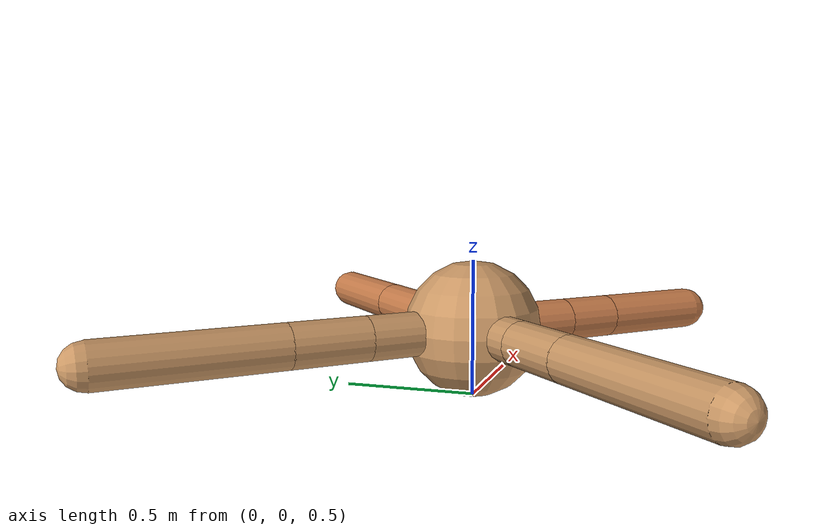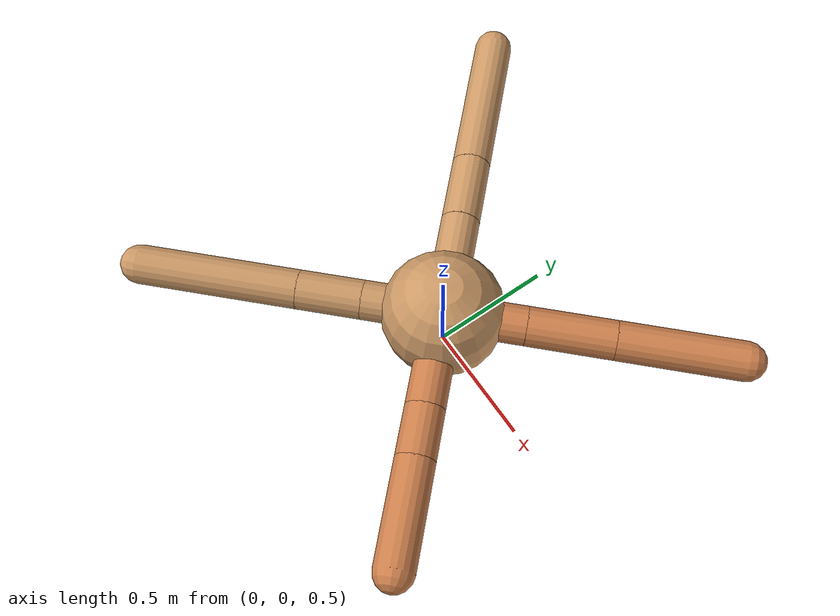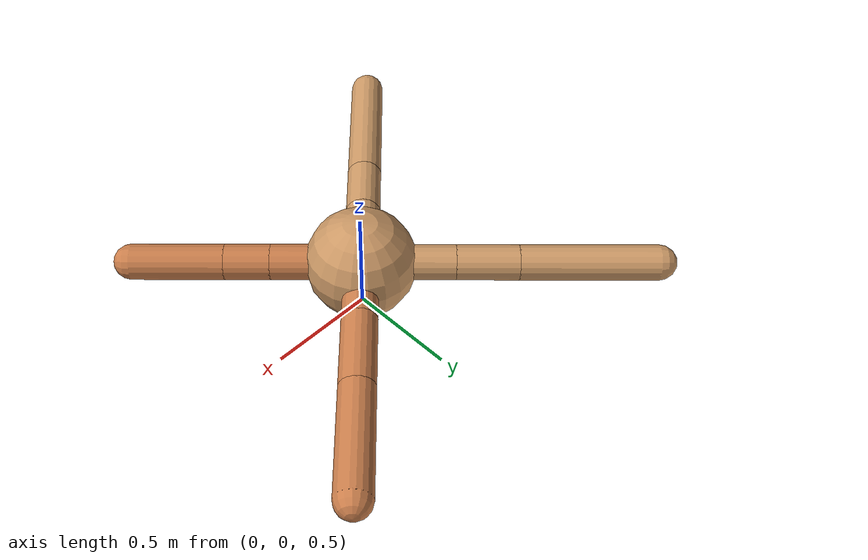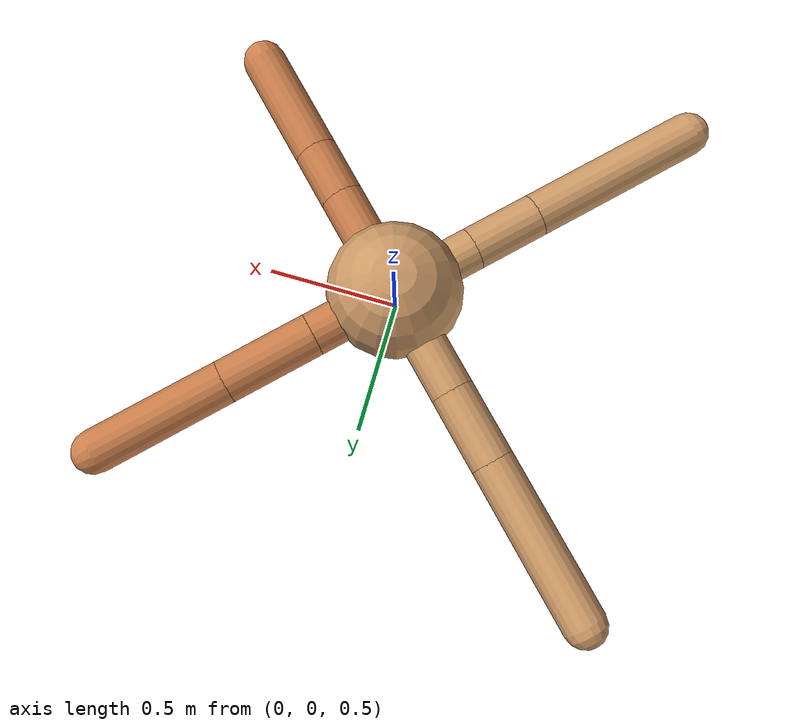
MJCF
<mujoco model="ant">
  <compiler angle="degree" coordinate="local" inertiafromgeom="true" />
  <option integrator="RK4" timestep="0.01" />
  <custom>
    <numeric data="0.0 0.0 0.55 1.0 0.0 0.0 0.0 0.0 1.0 0.0 -1.0 0.0 -1.0 0.0 1.0" name="init_qpos" />
  </custom>
  <default>
    <joint armature="1" damping="1" limited="true" />
    <geom conaffinity="0" condim="3" density="5.0" friction="1.5 0.1 0.1" margin="0.01" rgba="0.8 0.6 0.4 1" />
  </default>
  <worldbody>
    <body name="torso" pos="0 0 0.75">
      <geom name="torso_geom" pos="0 0 0" size="0.25" type="sphere" />

      <body name="front_left_leg" pos="0 0 0">
        <geom fromto="0.0 0.0 0.0 0.2368483332655191 0.2368483332655191 0.0" name="aux_1_geom" size="0.08" type="capsule" rgba=".8 .5 .3 1" />
        <body name="aux_1" pos="0.2368483332655191 0.2368483332655191 0.0">
          <joint axis="0 0 1" name="hip_1" pos="0.0 0.0 0.0" range="-40 40" type="hinge" />
          <geom fromto="0.0 0.0 0.0 0.2482575235350132 0.2482575235350132 0.0" name="left_leg_geom" size="0.08" type="capsule" rgba=".8 .5 .3 1" />
          <body pos="0.2482575235350132 0.2482575235350132 0.0" name="front_left_foot">
            <joint axis="-1 1 0" name="ankle_1" pos="0.0 0.0 0.0" range="30 100" type="hinge" />
            <geom fromto="0.0 0.0 0.0 0.3595320928514142 0.3595320928514142 0.0" name="left_ankle_geom" size="0.08" type="capsule" rgba=".8 .5 .3 1" />
          </body>
        </body>
      </body>
      <body name="front_right_leg" pos="0 0 0">
        <geom fromto="0.0 0.0 0.0 -0.29757083732350587 0.29757083732350587 0.0" name="aux_2_geom" size="0.08" type="capsule" />
        <body name="aux_2" pos="-0.29757083732350587 0.29757083732350587 0.0">
          <joint axis="0 0 1" name="hip_2" pos="0.0 0.0 0.0" range="-40 40" type="hinge" />
          <geom fromto="0.0 0.0 0.0 -0.1986991179198504 0.1986991179198504 0.0" name="right_leg_geom" size="0.08" type="capsule" />
          <body pos="-0.1986991179198504 0.1986991179198504 0.0" name="front_right_foot">
            <joint axis="1 1 0" name="ankle_2" pos="0.0 0.0 0.0" range="-100 -30" type="hinge" />
            <geom fromto="0.0 0.0 0.0 -0.44023371334529354 0.44023371334529354 0.0" name="right_ankle_geom" size="0.08" type="capsule" />
          </body>
        </body>
      </body>
      <body name="left_back_leg" pos="0 0 0">
        <geom fromto="0.0 0.0 0.0 -0.2291844495738774 -0.2291844495738774 0.0" name="aux_3_geom" size="0.08" type="capsule" />
        <body name="aux_3" pos="-0.2291844495738774 -0.2291844495738774 0.0">
          <joint axis="0 0 1" name="hip_3" pos="0.0 0.0 0.0" range="-40 40" type="hinge" />
          <geom fromto="0.0 0.0 0.0 -0.18581818995468183 -0.18581818995468183 0.0" name="back_leg_geom" size="0.08" type="capsule" />
          <body pos="-0.18581818995468183 -0.18581818995468183 0.0" name="left_back_foot">
            <joint axis="-1 1 0" name="ankle_3" pos="0.0 0.0 0.0" range="-100 -30" type="hinge" />
            <geom fromto="0.0 0.0 0.0 -0.4660463045218937 -0.4660463045218937 0.0" name="third_ankle_geom" size="0.08" type="capsule" />
          </body>
        </body>
      </body>
      <body name="right_back_leg" pos="0 0 0">
        <geom fromto="0.0 0.0 0.0 0.2851314060179739 -0.2851314060179739 0.0" name="aux_4_geom" size="0.08" type="capsule" rgba=".8 .5 .3 1" />
        <body name="aux_4" pos="0.2851314060179739 -0.2851314060179739 0.0">
          <joint axis="0 0 1" name="hip_4" pos="0.0 0.0 0.0" range="-40 40" type="hinge" />
          <geom fromto="0.0 0.0 0.0 0.14412738689468257 -0.14412738689468257 0.0" name="rightback_leg_geom" size="0.08" type="capsule" rgba=".8 .5 .3 1" />
          <body pos="0.14412738689468257 -0.14412738689468257 0.0" name="right_back_foot">
            <joint axis="1 1 0" name="ankle_4" pos="0.0 0.0 0.0" range="30 100" type="hinge" />
            <geom fromto="0.0 0.0 0.0 0.29373586769817184 -0.29373586769817184 0.0" name="fourth_ankle_geom" size="0.08" type="capsule" rgba=".8 .5 .3 1" />
          </body>
        </body>
      </body>
    </body>
  </worldbody>
  <actuator>
    <motor ctrllimited="true" ctrlrange="-1.0 1.0" joint="hip_4" gear="150" />
    <motor ctrllimited="true" ctrlrange="-1.0 1.0" joint="ankle_4" gear="150" />
    <motor ctrllimited="true" ctrlrange="-1.0 1.0" joint="hip_1" gear="150" />
    <motor ctrllimited="true" ctrlrange="-1.0 1.0" joint="ankle_1" gear="150" />
    <motor ctrllimited="true" ctrlrange="-1.0 1.0" joint="hip_2" gear="150" />
    <motor ctrllimited="true" ctrlrange="-1.0 1.0" joint="ankle_2" gear="150" />
    <motor ctrllimited="true" ctrlrange="-1.0 1.0" joint="hip_3" gear="150" />
    <motor ctrllimited="true" ctrlrange="-1.0 1.0" joint="ankle_3" gear="150" />
  </actuator>
</mujoco>
